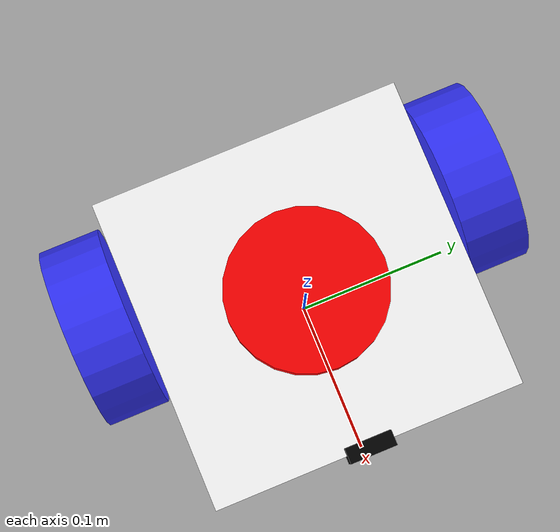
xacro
<?xml version="1.0"?>
<robot xmlns:xacro="http://www.ros.org/wiki/xacro"  name="robot">

    <xacro:include filename="robot_core.xacro" />
    <xacro:include filename="gazebo_control.xacro" />
    <xacro:include filename="lidar.xacro" />
    <xacro:include filename="camera.xacro" />

    <ros2_control name="DiffDriveController" type="system">
    <hardware>
        <plugin>gazebo_ros2_control/GazeboSystem</plugin>
    </hardware>

    <joint name="left_wheel_joint">
        <state_interface name="velocity"/>
        <command_interface name="velocity"/>
    </joint>

    <joint name="right_wheel_joint">
        <state_interface name="velocity"/>
        <command_interface name="velocity"/>
    </joint>

    <controller name="diff_drive_controller" type="diff_drive_controller/DiffDriveController">
        <param name="wheel_separation">0.35</param> <!-- Update if necessary -->
        <param name="wheel_radius">0.06</param>     <!-- Update if necessary -->
        <param name="cmd_vel_timeout">0.5</param>
        <param name="linear.x.has_velocity_limits">true</param>
        <param name="linear.x.max_velocity">1.0</param>
        <param name="angular.z.has_velocity_limits">true</param>
        <param name="angular.z.max_velocity">1.0</param>
        <left_wheel>left_wheel_joint</left_wheel>
        <right_wheel>right_wheel_joint</right_wheel>
    </controller>
</ros2_control>

</robot>

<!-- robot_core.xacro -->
<robot xmlns:xacro="http://www.ros.org/wiki/xacro" >

    <xacro:include filename="inertial_macros.xacro"/>

    <material name="white">
        <color rgba="1 1 1 1" />
    </material>

    <material name="red">
        <color rgba="1 0.0 0.0 1"/>
    </material>

    <material name="blue">
        <color rgba="0.2 0.2 1 1"/>
    </material>

    <material name="black">
        <color rgba="0 0 0 1"/>
    </material>

    <!-- BASE LINK -->

    <link name="base_link">

    </link>

    <!-- CHASSIS LINK -->

    <joint name="chassis_joint" type="fixed">
        <parent link="base_link"/>
        <child link="chassis"/>
        <origin xyz="-0.1 0 0"/>
    </joint>

    <link name="chassis">
        <visual>
            <origin xyz="0.1 0 0.05"/>
            <geometry>
                <box size="0.2 0.2 0.10"/>
            </geometry>
            <material name="white"/>
        </visual>
        <collision>
            <origin xyz="0.1 0 0.05"/>
            <geometry>
                <box size="0.2 0.2 0.10"/>
            </geometry>
        </collision>
        <xacro:inertial_box mass="2" x="0.2" y="0.2" z="0.10">
            <origin xyz="0.1 0 0.05" rpy="0 0 0"/>
        </xacro:inertial_box>
    </link>

    <gazebo reference="chassis">
        <material>Gazebo/White</material>
    </gazebo>

    <!-- LEFT WHEEL LINK -->

    <joint name="left_wheel_joint" type="continuous">
        <parent link="chassis"/>
        <child link="left_wheel"/>
        <origin xyz="0.065 0.125 0.04" rpy="-${pi/2} 0 0" />
        <axis xyz="0 0 1"/>
    </joint>

    <link name="left_wheel">
        <visual>
            <geometry>
                <cylinder radius="0.06" length="0.04"/>
            </geometry>
            <material name="blue"/>
        </visual>
        <collision>
            <geometry>
                <cylinder radius="0.06" length="0.04"/>
            </geometry>
        </collision>
        <xacro:inertial_cylinder mass="0.1" length="0.04" radius="0.06">
            <origin xyz="0 0 0" rpy="0 0 0"/>
        </xacro:inertial_cylinder>
    </link>

    <gazebo reference="left_wheel">
        <material>Gazebo/Blue</material>
    </gazebo>

    <!-- RIGHT WHEEL LINK -->

    <joint name="right_wheel_joint" type="continuous">
        <parent link="chassis"/>
        <child link="right_wheel"/>
        <origin xyz="0.065 -0.125 0.04" rpy="${pi/2} 0 0" />
        <axis xyz="0 0 -1"/>
    </joint>

    <link name="right_wheel">
        <visual>
            <geometry>
                <cylinder radius="0.06" length="0.04"/>
            </geometry>
            <material name="blue"/>
        </visual>
        <collision>
            <geometry>
                <cylinder radius="0.06" length="0.04"/>
            </geometry>
        </collision>
        <xacro:inertial_cylinder mass="0.1" length="0.04" radius="0.06">
            <origin xyz="0 0 0" rpy="0 0 0"/>
        </xacro:inertial_cylinder>
    </link>

    <gazebo reference="right_wheel">
        <material>Gazebo/Blue</material>
    </gazebo>

    <!-- CASTER WHEEL LINK -->

    <joint name="caster_wheel_joint" type="fixed">
        <parent link="chassis"/>
        <child link="caster_wheel"/>
        <origin xyz="0.161 0 0"/>
    </joint>

    <link name="caster_wheel">
        <visual>
            <geometry>
                <sphere radius="0.021"/>
            </geometry>
            <material name="black"/>
        </visual>
        <collision>
            <geometry>
                <sphere radius="0.021"/>
            </geometry>
        </collision>
        <xacro:inertial_sphere mass="0.1" radius="0.021">
            <origin xyz="0 0 0" rpy="0 0 0"/>
        </xacro:inertial_sphere>
    </link>

    <gazebo reference="caster_wheel">
        <material>Gazebo/Black</material>
        <mu1 value="0.001"/>
        <mu2 value="0.001"/>
    </gazebo>

</robot>

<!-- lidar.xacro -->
<robot xmlns:xacro="http://www.ros.org/wiki/xacro" >

    <joint name="laser_joint" type="fixed">
        <parent link="chassis"/>
        <child link="laser_frame"/>
        <origin xyz="0.1 0 0.1150" rpy="0 0 0"/>
    </joint>

    <link name="laser_frame">
        <visual>
            <geometry>
                <cylinder radius="0.05" length="0.02"/>
            </geometry>
            <material name="red"/>
        </visual>
        <collision>
            <geometry>
                <cylinder radius="0.05" length="0.02"/>
            </geometry>
        </collision>
        <xacro:inertial_cylinder mass="0.1" length="0.02" radius="0.05">
            <origin xyz="0 0 0" rpy="0 0 0"/>
        </xacro:inertial_cylinder>
    </link>

    <gazebo reference="laser_frame">
        <material>Gazebo/Red</material>

        <sensor name="laser" type="ray">
            <pose> 0 0 0 0 0 0 </pose>
            <visualize>true</visualize>
            <update_rate>10</update_rate>
            <ray>
                <scan>
                    <horizontal>
                        <samples>360</samples>
                        <min_angle>-3.14</min_angle>
                        <max_angle>3.14</max_angle>
                    </horizontal>
                </scan>
                <range>
                    <min>0.3</min>
                    <max>6</max>
                </range>
            </ray>
            <plugin name="laser_controller" filename="libgazebo_ros_ray_sensor.so">
                <ros>
                    <argument>~/out:=scan</argument>
                </ros>
                <output_type>sensor_msgs/LaserScan</output_type>
                <frame_name>laser_frame</frame_name>
            </plugin>
        </sensor>
    </gazebo>

</robot>

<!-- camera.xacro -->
<robot xmlns:xacro="http://www.ros.org/wiki/xacro" >

    <joint name="camera_joint" type="fixed">
        <parent link="chassis"/>
        <child link="camera_link"/>
        <origin xyz="0.2 0 0.095" rpy="0 0 0"/>
    </joint>

    <link name="camera_link">
        <visual>
            <geometry>
                <box size="0.010 0.03 0.03"/>
            </geometry>
            <material name="black"/>
        </visual>
        <visual>
            <origin xyz="0 0 -0.05"/>
            <geometry>
                <cylinder radius="0.002" length="0.1"/>
            </geometry>
            <material name="black"/>
        </visual>
    </link>

    <joint name="camera_optical_joint" type="fixed">
        <parent link="camera_link"/>
        <child link="camera_link_optical"/>
        <origin xyz="0 0 0" rpy="${-pi/2} 0 ${-pi/2}"/>
    </joint>

    <link name="camera_link_optical"></link>

    <gazebo reference="camera_link">
        <material>Gazebo/Black</material>

        <sensor name="camera" type="camera">
            <pose> 0 0 0 0 0 0 </pose>
            <visualize>true</visualize>
            <update_rate>10</update_rate>
            <camera>
                <horizontal_fov>1.089</horizontal_fov>
                <image>
                    <format>R8G8B8</format>
                    <width>640</width>
                    <height>480</height>
                </image>
                <clip>
                    <near>0.05</near>
                    <far>8.0</far>
                </clip>
            </camera>
            <plugin name="camera_controller" filename="libgazebo_ros_camera.so">
                <frame_name>camera_link_optical</frame_name>
            </plugin>
        </sensor>
    </gazebo>

</robot>
